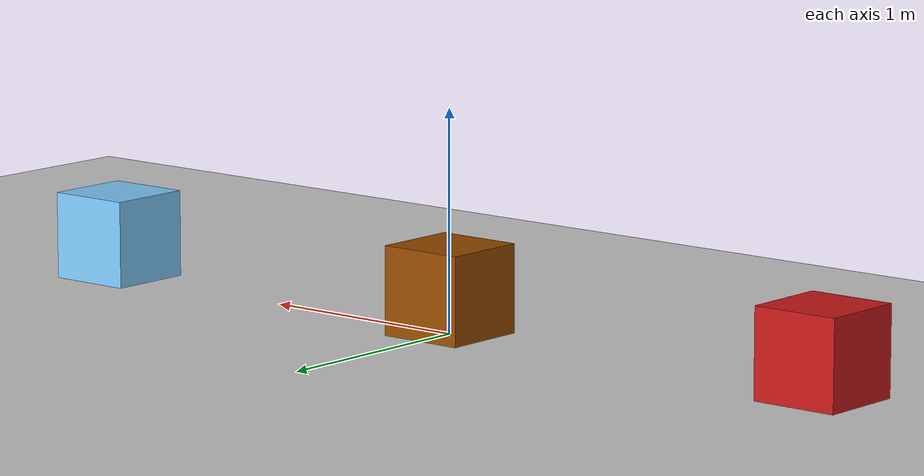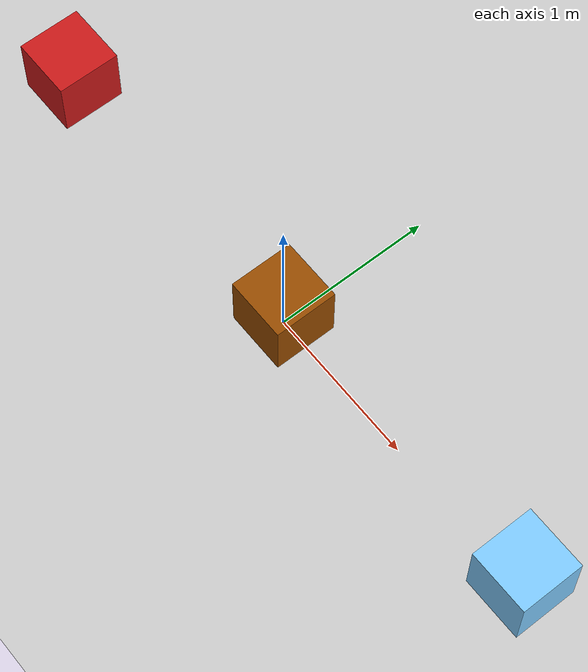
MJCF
<mujoco>
  <option gravity="0 0 -9.81" />
  <worldbody>
    <body name="object_4" pos="0 0 0">
      <geom type="plane" size="30 30 0.1" rgba="0.8 0.8 0.8 1" />
    </body>
    <body name="object_1" pos="-2 0 0.2">
      <geom type="box" size="0.2 0.2 0.2" mass="1" friction="2 2 2" rgba="0.8 0.1 0.1 1" />
      <joint type="free" name="object_1_joint" />
    </body>
    <body name="object_2" pos="0 0 0.2">
      <geom type="box" size="0.2 0.2 0.2" mass="1" friction="0.8 0.8 0.8" rgba="0.6 0.3 0 1" />
      <joint type="free" name="object_2_joint" />
    </body>
    <body name="object_3" pos="2 0 0.2">
      <geom type="box" size="0.2 0.2 0.2" mass="1" friction="0.05 0.05 0.05" rgba="0.5 0.8 1 1" />
      <joint type="free" name="object_3_joint" />
    </body>
    <body name="object_5" pos="0 0 1" />
  </worldbody>
</mujoco>
